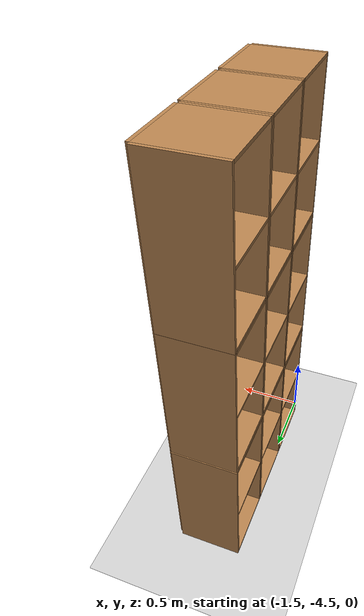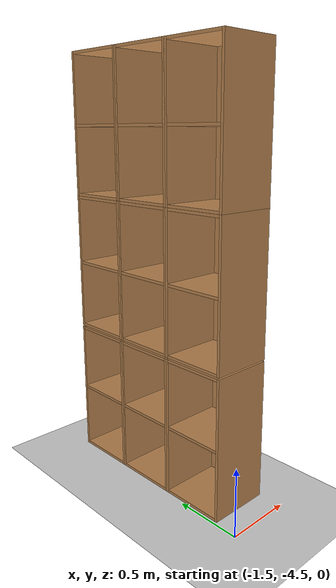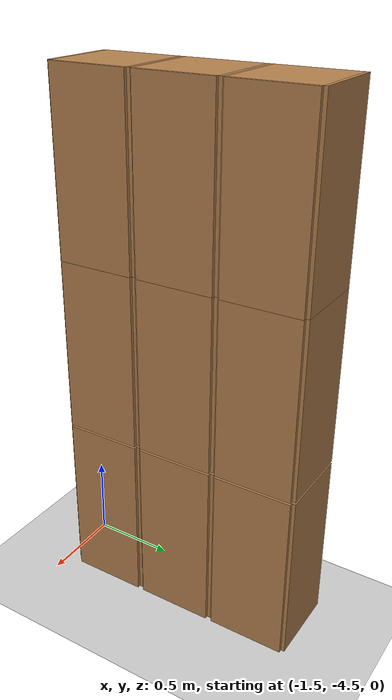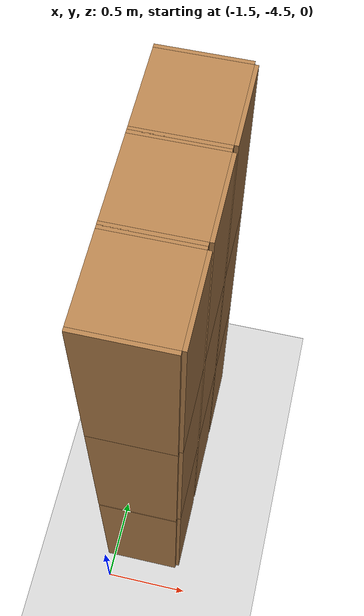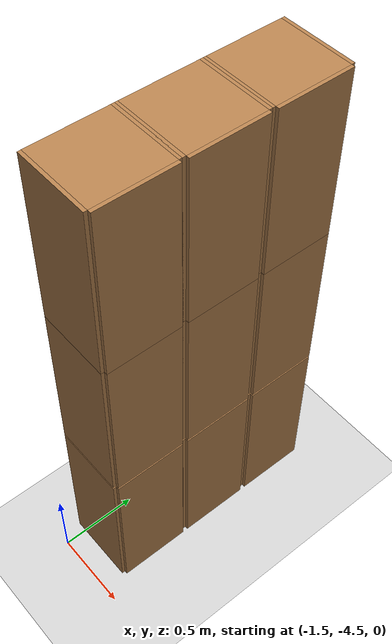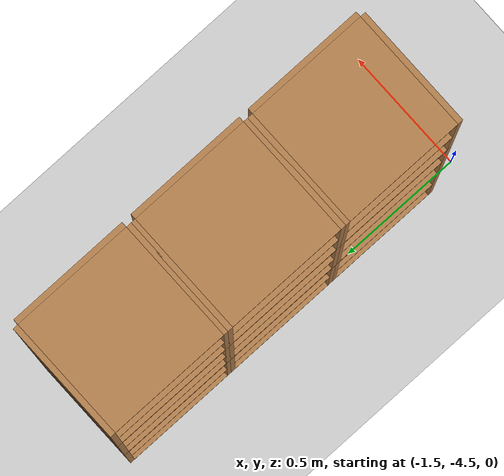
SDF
<sdf version="1.6">
 <world name="default">
  <model name="ground_plane">
   <static>1</static>
   <link name="link">
    <collision name="collision">
     <geometry><plane><normal>0 0 1</normal><size>100 100</size></plane></geometry>
     <surface>
      <contact><collide_bitmask>65535</collide_bitmask></contact>
      <friction><ode><mu>100</mu><mu2>50</mu2></ode></friction>
     </surface>
    </collision>
    <visual name="visual">
     <cast_shadows>0</cast_shadows>
     <geometry><plane><normal>0 0 1</normal><size>100 100</size></plane></geometry>
     <material>
      <script><uri>file://media/materials/scripts/gazebo.material</uri><name>Gazebo/Grey</name></script>
     </material>
    </visual>
   </link>
  </model>
  <model name="Locker18_clone_4_clone_2_clone_2_clone_2_clone_clone">
   <model name="Locker18">
    <model name="Locker3">
     <model name="cabinet">
      <static>1</static>
      <link name="cabinet_bottom_plate">
       <inertial>
        <pose>0 0 -1 0 -0 0</pose>
        <inertia><ixx>2.05</ixx><ixy>0</ixy><ixz>0</ixz><iyy>2.05</iyy><iyz>0</iyz><izz>2.05</izz></inertia>
        <mass>25</mass>
       </inertial>
       <collision name="cabinet_bottom_plate_geom">
        <pose>0 0 0.01 0 -0 0</pose>
        <geometry><box><size>0.45 0.45 0.02</size></box></geometry>
       </collision>
       <visual name="cabinet_bottom_plate_geom_visual">
        <pose>0 0 0.01 0 -0 0</pose>
        <geometry><box><size>0.45 0.45 0.02</size></box></geometry>
        <material>
         <script><uri>file://media/materials/scripts/gazebo.material</uri><name>Gazebo/Wood</name></script>
        </material>
       </visual>
       <collision name="cabinet_bottom_plate_geom_cabinet_back_plate">
        <pose>0.235 0 0.51 0 -0 0</pose>
        <geometry><box><size>0.02 0.45 1.02</size></box></geometry>
       </collision>
       <visual name="cabinet_bottom_plate_geom_cabinet_back_plate_visual">
        <pose>0.235 0 0.51 0 -0 0</pose>
        <geometry><box><size>0.02 0.45 1.02</size></box></geometry>
        <material>
         <script><uri>file://media/materials/scripts/gazebo.material</uri><name>Gazebo/Wood</name></script>
        </material>
       </visual>
       <collision name="cabinet_bottom_plate_geom_cabinet_left_plate">
        <pose>0 0.235 0.51 0 -0 0</pose>
        <geometry><box><size>0.45 0.02 1.02</size></box></geometry>
       </collision>
       <visual name="cabinet_bottom_plate_geom_cabinet_left_plate_visual">
        <pose>0 0.235 0.51 0 -0 0</pose>
        <geometry><box><size>0.45 0.02 1.02</size></box></geometry>
        <material>
         <script><uri>file://media/materials/scripts/gazebo.material</uri><name>Gazebo/Wood</name></script>
        </material>
       </visual>
       <collision name="cabinet_bottom_plate_geom_cabinet_middle_plate">
        <pose>0 0 0.51 0 -0 0</pose>
        <geometry><box><size>0.45 0.45 0.02</size></box></geometry>
       </collision>
       <visual name="cabinet_bottom_plate_geom_cabinet_middle_plate_visual">
        <pose>0 0 0.51 0 -0 0</pose>
        <geometry><box><size>0.45 0.45 0.02</size></box></geometry>
        <material>
         <script><uri>file://media/materials/scripts/gazebo.material</uri><name>Gazebo/Wood</name></script>
        </material>
       </visual>
       <collision name="cabinet_bottom_plate_geom_cabinet_right_plate">
        <pose>0 -0.235 0.51 0 -0 0</pose>
        <geometry><box><size>0.45 0.02 1.02</size></box></geometry>
       </collision>
       <visual name="cabinet_bottom_plate_geom_cabinet_right_plate_visual">
        <pose>0 -0.235 0.51 0 -0 0</pose>
        <geometry><box><size>0.45 0.02 1.02</size></box></geometry>
        <material>
         <script><uri>file://media/materials/scripts/gazebo.material</uri><name>Gazebo/Wood</name></script>
        </material>
       </visual>
       <collision name="cabinet_bottom_plate_geom_cabinet_top_plate">
        <pose>0 0 1.01 0 -0 0</pose>
        <geometry><box><size>0.45 0.45 0.02</size></box></geometry>
       </collision>
       <visual name="cabinet_bottom_plate_geom_cabinet_top_plate_visual">
        <pose>0 0 1.01 0 -0 0</pose>
        <geometry><box><size>0.45 0.45 0.02</size></box></geometry>
        <material>
         <script><uri>file://media/materials/scripts/gazebo.material</uri><name>Gazebo/Wood</name></script>
        </material>
       </visual>
      </link>
      <pose>-0.676968 1.45758 0 0 -0 0</pose>
     </model>
     <model name="cabinet_clone">
      <static>1</static>
      <link name="cabinet_bottom_plate">
       <inertial>
        <pose>0 0 -1 0 -0 0</pose>
        <inertia><ixx>2.05</ixx><ixy>0</ixy><ixz>0</ixz><iyy>2.05</iyy><iyz>0</iyz><izz>2.05</izz></inertia>
        <mass>25</mass>
       </inertial>
       <collision name="cabinet_bottom_plate_geom">
        <pose>0 0 0.01 0 -0 0</pose>
        <geometry><box><size>0.45 0.45 0.02</size></box></geometry>
       </collision>
       <visual name="cabinet_bottom_plate_geom_visual">
        <pose>0 0 0.01 0 -0 0</pose>
        <geometry><box><size>0.45 0.45 0.02</size></box></geometry>
        <material>
         <script><uri>file://media/materials/scripts/gazebo.material</uri><name>Gazebo/Wood</name></script>
        </material>
       </visual>
       <collision name="cabinet_bottom_plate_geom_cabinet_back_plate">
        <pose>0.235 0 0.51 0 -0 0</pose>
        <geometry><box><size>0.02 0.45 1.02</size></box></geometry>
       </collision>
       <visual name="cabinet_bottom_plate_geom_cabinet_back_plate_visual">
        <pose>0.235 0 0.51 0 -0 0</pose>
        <geometry><box><size>0.02 0.45 1.02</size></box></geometry>
        <material>
         <script><uri>file://media/materials/scripts/gazebo.material</uri><name>Gazebo/Wood</name></script>
        </material>
       </visual>
       <collision name="cabinet_bottom_plate_geom_cabinet_left_plate">
        <pose>0 0.235 0.51 0 -0 0</pose>
        <geometry><box><size>0.45 0.02 1.02</size></box></geometry>
       </collision>
       <visual name="cabinet_bottom_plate_geom_cabinet_left_plate_visual">
        <pose>0 0.235 0.51 0 -0 0</pose>
        <geometry><box><size>0.45 0.02 1.02</size></box></geometry>
        <material>
         <script><uri>file://media/materials/scripts/gazebo.material</uri><name>Gazebo/Wood</name></script>
        </material>
       </visual>
       <collision name="cabinet_bottom_plate_geom_cabinet_middle_plate">
        <pose>0 0 0.51 0 -0 0</pose>
        <geometry><box><size>0.45 0.45 0.02</size></box></geometry>
       </collision>
       <visual name="cabinet_bottom_plate_geom_cabinet_middle_plate_visual">
        <pose>0 0 0.51 0 -0 0</pose>
        <geometry><box><size>0.45 0.45 0.02</size></box></geometry>
        <material>
         <script><uri>file://media/materials/scripts/gazebo.material</uri><name>Gazebo/Wood</name></script>
        </material>
       </visual>
       <collision name="cabinet_bottom_plate_geom_cabinet_right_plate">
        <pose>0 -0.235 0.51 0 -0 0</pose>
        <geometry><box><size>0.45 0.02 1.02</size></box></geometry>
       </collision>
       <visual name="cabinet_bottom_plate_geom_cabinet_right_plate_visual">
        <pose>0 -0.235 0.51 0 -0 0</pose>
        <geometry><box><size>0.45 0.02 1.02</size></box></geometry>
        <material>
         <script><uri>file://media/materials/scripts/gazebo.material</uri><name>Gazebo/Wood</name></script>
        </material>
       </visual>
       <collision name="cabinet_bottom_plate_geom_cabinet_top_plate">
        <pose>0 0 1.01 0 -0 0</pose>
        <geometry><box><size>0.45 0.45 0.02</size></box></geometry>
       </collision>
       <visual name="cabinet_bottom_plate_geom_cabinet_top_plate_visual">
        <pose>0 0 1.01 0 -0 0</pose>
        <geometry><box><size>0.45 0.45 0.02</size></box></geometry>
        <material>
         <script><uri>file://media/materials/scripts/gazebo.material</uri><name>Gazebo/Wood</name></script>
        </material>
       </visual>
      </link>
      <pose>-0.676968 0.970971 0 0 -0 0</pose>
     </model>
     <model name="cabinet_clone_0">
      <static>1</static>
      <link name="cabinet_bottom_plate">
       <inertial>
        <pose>0 0 -1 0 -0 0</pose>
        <inertia><ixx>2.05</ixx><ixy>0</ixy><ixz>0</ixz><iyy>2.05</iyy><iyz>0</iyz><izz>2.05</izz></inertia>
        <mass>25</mass>
       </inertial>
       <collision name="cabinet_bottom_plate_geom">
        <pose>0 0 0.01 0 -0 0</pose>
        <geometry><box><size>0.45 0.45 0.02</size></box></geometry>
       </collision>
       <visual name="cabinet_bottom_plate_geom_visual">
        <pose>0 0 0.01 0 -0 0</pose>
        <geometry><box><size>0.45 0.45 0.02</size></box></geometry>
        <material>
         <script><uri>file://media/materials/scripts/gazebo.material</uri><name>Gazebo/Wood</name></script>
        </material>
       </visual>
       <collision name="cabinet_bottom_plate_geom_cabinet_back_plate">
        <pose>0.235 0 0.51 0 -0 0</pose>
        <geometry><box><size>0.02 0.45 1.02</size></box></geometry>
       </collision>
       <visual name="cabinet_bottom_plate_geom_cabinet_back_plate_visual">
        <pose>0.235 0 0.51 0 -0 0</pose>
        <geometry><box><size>0.02 0.45 1.02</size></box></geometry>
        <material>
         <script><uri>file://media/materials/scripts/gazebo.material</uri><name>Gazebo/Wood</name></script>
        </material>
       </visual>
       <collision name="cabinet_bottom_plate_geom_cabinet_left_plate">
        <pose>0 0.235 0.51 0 -0 0</pose>
        <geometry><box><size>0.45 0.02 1.02</size></box></geometry>
       </collision>
       <visual name="cabinet_bottom_plate_geom_cabinet_left_plate_visual">
        <pose>0 0.235 0.51 0 -0 0</pose>
        <geometry><box><size>0.45 0.02 1.02</size></box></geometry>
        <material>
         <script><uri>file://media/materials/scripts/gazebo.material</uri><name>Gazebo/Wood</name></script>
        </material>
       </visual>
       <collision name="cabinet_bottom_plate_geom_cabinet_middle_plate">
        <pose>0 0 0.51 0 -0 0</pose>
        <geometry><box><size>0.45 0.45 0.02</size></box></geometry>
       </collision>
       <visual name="cabinet_bottom_plate_geom_cabinet_middle_plate_visual">
        <pose>0 0 0.51 0 -0 0</pose>
        <geometry><box><size>0.45 0.45 0.02</size></box></geometry>
        <material>
         <script><uri>file://media/materials/scripts/gazebo.material</uri><name>Gazebo/Wood</name></script>
        </material>
       </visual>
       <collision name="cabinet_bottom_plate_geom_cabinet_right_plate">
        <pose>0 -0.235 0.51 0 -0 0</pose>
        <geometry><box><size>0.45 0.02 1.02</size></box></geometry>
       </collision>
       <visual name="cabinet_bottom_plate_geom_cabinet_right_plate_visual">
        <pose>0 -0.235 0.51 0 -0 0</pose>
        <geometry><box><size>0.45 0.02 1.02</size></box></geometry>
        <material>
         <script><uri>file://media/materials/scripts/gazebo.material</uri><name>Gazebo/Wood</name></script>
        </material>
       </visual>
       <collision name="cabinet_bottom_plate_geom_cabinet_top_plate">
        <pose>0 0 1.01 0 -0 0</pose>
        <geometry><box><size>0.45 0.45 0.02</size></box></geometry>
       </collision>
       <visual name="cabinet_bottom_plate_geom_cabinet_top_plate_visual">
        <pose>0 0 1.01 0 -0 0</pose>
        <geometry><box><size>0.45 0.45 0.02</size></box></geometry>
        <material>
         <script><uri>file://media/materials/scripts/gazebo.material</uri><name>Gazebo/Wood</name></script>
        </material>
       </visual>
      </link>
      <pose>-0.676968 0.48391 0 0 -0 0</pose>
     </model>
     <static>0</static>
     <pose>0 3e-06 -1.02763 0 -0 0</pose>
    </model>
    <model name="Locker3_clone">
     <model name="cabinet">
      <static>1</static>
      <link name="cabinet_bottom_plate">
       <inertial>
        <pose>0 0 -1 0 -0 0</pose>
        <inertia><ixx>2.05</ixx><ixy>0</ixy><ixz>0</ixz><iyy>2.05</iyy><iyz>0</iyz><izz>2.05</izz></inertia>
        <mass>25</mass>
       </inertial>
       <collision name="cabinet_bottom_plate_geom">
        <pose>0 0 0.01 0 -0 0</pose>
        <geometry><box><size>0.45 0.45 0.02</size></box></geometry>
       </collision>
       <visual name="cabinet_bottom_plate_geom_visual">
        <pose>0 0 0.01 0 -0 0</pose>
        <geometry><box><size>0.45 0.45 0.02</size></box></geometry>
        <material>
         <script><uri>file://media/materials/scripts/gazebo.material</uri><name>Gazebo/Wood</name></script>
        </material>
       </visual>
       <collision name="cabinet_bottom_plate_geom_cabinet_back_plate">
        <pose>0.235 0 0.51 0 -0 0</pose>
        <geometry><box><size>0.02 0.45 1.02</size></box></geometry>
       </collision>
       <visual name="cabinet_bottom_plate_geom_cabinet_back_plate_visual">
        <pose>0.235 0 0.51 0 -0 0</pose>
        <geometry><box><size>0.02 0.45 1.02</size></box></geometry>
        <material>
         <script><uri>file://media/materials/scripts/gazebo.material</uri><name>Gazebo/Wood</name></script>
        </material>
       </visual>
       <collision name="cabinet_bottom_plate_geom_cabinet_left_plate">
        <pose>0 0.235 0.51 0 -0 0</pose>
        <geometry><box><size>0.45 0.02 1.02</size></box></geometry>
       </collision>
       <visual name="cabinet_bottom_plate_geom_cabinet_left_plate_visual">
        <pose>0 0.235 0.51 0 -0 0</pose>
        <geometry><box><size>0.45 0.02 1.02</size></box></geometry>
        <material>
         <script><uri>file://media/materials/scripts/gazebo.material</uri><name>Gazebo/Wood</name></script>
        </material>
       </visual>
       <collision name="cabinet_bottom_plate_geom_cabinet_middle_plate">
        <pose>0 0 0.51 0 -0 0</pose>
        <geometry><box><size>0.45 0.45 0.02</size></box></geometry>
       </collision>
       <visual name="cabinet_bottom_plate_geom_cabinet_middle_plate_visual">
        <pose>0 0 0.51 0 -0 0</pose>
        <geometry><box><size>0.45 0.45 0.02</size></box></geometry>
        <material>
         <script><uri>file://media/materials/scripts/gazebo.material</uri><name>Gazebo/Wood</name></script>
        </material>
       </visual>
       <collision name="cabinet_bottom_plate_geom_cabinet_right_plate">
        <pose>0 -0.235 0.51 0 -0 0</pose>
        <geometry><box><size>0.45 0.02 1.02</size></box></geometry>
       </collision>
       <visual name="cabinet_bottom_plate_geom_cabinet_right_plate_visual">
        <pose>0 -0.235 0.51 0 -0 0</pose>
        <geometry><box><size>0.45 0.02 1.02</size></box></geometry>
        <material>
         <script><uri>file://media/materials/scripts/gazebo.material</uri><name>Gazebo/Wood</name></script>
        </material>
       </visual>
       <collision name="cabinet_bottom_plate_geom_cabinet_top_plate">
        <pose>0 0 1.01 0 -0 0</pose>
        <geometry><box><size>0.45 0.45 0.02</size></box></geometry>
       </collision>
       <visual name="cabinet_bottom_plate_geom_cabinet_top_plate_visual">
        <pose>0 0 1.01 0 -0 0</pose>
        <geometry><box><size>0.45 0.45 0.02</size></box></geometry>
        <material>
         <script><uri>file://media/materials/scripts/gazebo.material</uri><name>Gazebo/Wood</name></script>
        </material>
       </visual>
      </link>
      <pose>-0.676968 1.45758 0 0 -0 0</pose>
     </model>
     <model name="cabinet_clone">
      <static>1</static>
      <link name="cabinet_bottom_plate">
       <inertial>
        <pose>0 0 -1 0 -0 0</pose>
        <inertia><ixx>2.05</ixx><ixy>0</ixy><ixz>0</ixz><iyy>2.05</iyy><iyz>0</iyz><izz>2.05</izz></inertia>
        <mass>25</mass>
       </inertial>
       <collision name="cabinet_bottom_plate_geom">
        <pose>0 0 0.01 0 -0 0</pose>
        <geometry><box><size>0.45 0.45 0.02</size></box></geometry>
       </collision>
       <visual name="cabinet_bottom_plate_geom_visual">
        <pose>0 0 0.01 0 -0 0</pose>
        <geometry><box><size>0.45 0.45 0.02</size></box></geometry>
        <material>
         <script><uri>file://media/materials/scripts/gazebo.material</uri><name>Gazebo/Wood</name></script>
        </material>
       </visual>
       <collision name="cabinet_bottom_plate_geom_cabinet_back_plate">
        <pose>0.235 0 0.51 0 -0 0</pose>
        <geometry><box><size>0.02 0.45 1.02</size></box></geometry>
       </collision>
       <visual name="cabinet_bottom_plate_geom_cabinet_back_plate_visual">
        <pose>0.235 0 0.51 0 -0 0</pose>
        <geometry><box><size>0.02 0.45 1.02</size></box></geometry>
        <material>
         <script><uri>file://media/materials/scripts/gazebo.material</uri><name>Gazebo/Wood</name></script>
        </material>
       </visual>
       <collision name="cabinet_bottom_plate_geom_cabinet_left_plate">
        <pose>0 0.235 0.51 0 -0 0</pose>
        <geometry><box><size>0.45 0.02 1.02</size></box></geometry>
       </collision>
       <visual name="cabinet_bottom_plate_geom_cabinet_left_plate_visual">
        <pose>0 0.235 0.51 0 -0 0</pose>
        <geometry><box><size>0.45 0.02 1.02</size></box></geometry>
        <material>
         <script><uri>file://media/materials/scripts/gazebo.material</uri><name>Gazebo/Wood</name></script>
        </material>
       </visual>
       <collision name="cabinet_bottom_plate_geom_cabinet_middle_plate">
        <pose>0 0 0.51 0 -0 0</pose>
        <geometry><box><size>0.45 0.45 0.02</size></box></geometry>
       </collision>
       <visual name="cabinet_bottom_plate_geom_cabinet_middle_plate_visual">
        <pose>0 0 0.51 0 -0 0</pose>
        <geometry><box><size>0.45 0.45 0.02</size></box></geometry>
        <material>
         <script><uri>file://media/materials/scripts/gazebo.material</uri><name>Gazebo/Wood</name></script>
        </material>
       </visual>
       <collision name="cabinet_bottom_plate_geom_cabinet_right_plate">
        <pose>0 -0.235 0.51 0 -0 0</pose>
        <geometry><box><size>0.45 0.02 1.02</size></box></geometry>
       </collision>
       <visual name="cabinet_bottom_plate_geom_cabinet_right_plate_visual">
        <pose>0 -0.235 0.51 0 -0 0</pose>
        <geometry><box><size>0.45 0.02 1.02</size></box></geometry>
        <material>
         <script><uri>file://media/materials/scripts/gazebo.material</uri><name>Gazebo/Wood</name></script>
        </material>
       </visual>
       <collision name="cabinet_bottom_plate_geom_cabinet_top_plate">
        <pose>0 0 1.01 0 -0 0</pose>
        <geometry><box><size>0.45 0.45 0.02</size></box></geometry>
       </collision>
       <visual name="cabinet_bottom_plate_geom_cabinet_top_plate_visual">
        <pose>0 0 1.01 0 -0 0</pose>
        <geometry><box><size>0.45 0.45 0.02</size></box></geometry>
        <material>
         <script><uri>file://media/materials/scripts/gazebo.material</uri><name>Gazebo/Wood</name></script>
        </material>
       </visual>
      </link>
      <pose>-0.676968 0.970971 0 0 -0 0</pose>
     </model>
     <model name="cabinet_clone_0">
      <static>1</static>
      <link name="cabinet_bottom_plate">
       <inertial>
        <pose>0 0 -1 0 -0 0</pose>
        <inertia><ixx>2.05</ixx><ixy>0</ixy><ixz>0</ixz><iyy>2.05</iyy><iyz>0</iyz><izz>2.05</izz></inertia>
        <mass>25</mass>
       </inertial>
       <collision name="cabinet_bottom_plate_geom">
        <pose>0 0 0.01 0 -0 0</pose>
        <geometry><box><size>0.45 0.45 0.02</size></box></geometry>
       </collision>
       <visual name="cabinet_bottom_plate_geom_visual">
        <pose>0 0 0.01 0 -0 0</pose>
        <geometry><box><size>0.45 0.45 0.02</size></box></geometry>
        <material>
         <script><uri>file://media/materials/scripts/gazebo.material</uri><name>Gazebo/Wood</name></script>
        </material>
       </visual>
       <collision name="cabinet_bottom_plate_geom_cabinet_back_plate">
        <pose>0.235 0 0.51 0 -0 0</pose>
        <geometry><box><size>0.02 0.45 1.02</size></box></geometry>
       </collision>
       <visual name="cabinet_bottom_plate_geom_cabinet_back_plate_visual">
        <pose>0.235 0 0.51 0 -0 0</pose>
        <geometry><box><size>0.02 0.45 1.02</size></box></geometry>
        <material>
         <script><uri>file://media/materials/scripts/gazebo.material</uri><name>Gazebo/Wood</name></script>
        </material>
       </visual>
       <collision name="cabinet_bottom_plate_geom_cabinet_left_plate">
        <pose>0 0.235 0.51 0 -0 0</pose>
        <geometry><box><size>0.45 0.02 1.02</size></box></geometry>
       </collision>
       <visual name="cabinet_bottom_plate_geom_cabinet_left_plate_visual">
        <pose>0 0.235 0.51 0 -0 0</pose>
        <geometry><box><size>0.45 0.02 1.02</size></box></geometry>
        <material>
         <script><uri>file://media/materials/scripts/gazebo.material</uri><name>Gazebo/Wood</name></script>
        </material>
       </visual>
       <collision name="cabinet_bottom_plate_geom_cabinet_middle_plate">
        <pose>0 0 0.51 0 -0 0</pose>
        <geometry><box><size>0.45 0.45 0.02</size></box></geometry>
       </collision>
       <visual name="cabinet_bottom_plate_geom_cabinet_middle_plate_visual">
        <pose>0 0 0.51 0 -0 0</pose>
        <geometry><box><size>0.45 0.45 0.02</size></box></geometry>
        <material>
         <script><uri>file://media/materials/scripts/gazebo.material</uri><name>Gazebo/Wood</name></script>
        </material>
       </visual>
       <collision name="cabinet_bottom_plate_geom_cabinet_right_plate">
        <pose>0 -0.235 0.51 0 -0 0</pose>
        <geometry><box><size>0.45 0.02 1.02</size></box></geometry>
       </collision>
       <visual name="cabinet_bottom_plate_geom_cabinet_right_plate_visual">
        <pose>0 -0.235 0.51 0 -0 0</pose>
        <geometry><box><size>0.45 0.02 1.02</size></box></geometry>
        <material>
         <script><uri>file://media/materials/scripts/gazebo.material</uri><name>Gazebo/Wood</name></script>
        </material>
       </visual>
       <collision name="cabinet_bottom_plate_geom_cabinet_top_plate">
        <pose>0 0 1.01 0 -0 0</pose>
        <geometry><box><size>0.45 0.45 0.02</size></box></geometry>
       </collision>
       <visual name="cabinet_bottom_plate_geom_cabinet_top_plate_visual">
        <pose>0 0 1.01 0 -0 0</pose>
        <geometry><box><size>0.45 0.45 0.02</size></box></geometry>
        <material>
         <script><uri>file://media/materials/scripts/gazebo.material</uri><name>Gazebo/Wood</name></script>
        </material>
       </visual>
      </link>
      <pose>-0.676968 0.48391 0 0 -0 0</pose>
     </model>
     <static>0</static>
     <pose>0 3e-06 0.003717 0 -0 0</pose>
    </model>
    <model name="Locker3_clone_clone">
     <model name="cabinet">
      <static>1</static>
      <link name="cabinet_bottom_plate">
       <inertial>
        <pose>0 0 -1 0 -0 0</pose>
        <inertia><ixx>2.05</ixx><ixy>0</ixy><ixz>0</ixz><iyy>2.05</iyy><iyz>0</iyz><izz>2.05</izz></inertia>
        <mass>25</mass>
       </inertial>
       <collision name="cabinet_bottom_plate_geom">
        <pose>0 0 0.01 0 -0 0</pose>
        <geometry><box><size>0.45 0.45 0.02</size></box></geometry>
       </collision>
       <visual name="cabinet_bottom_plate_geom_visual">
        <pose>0 0 0.01 0 -0 0</pose>
        <geometry><box><size>0.45 0.45 0.02</size></box></geometry>
        <material>
         <script><uri>file://media/materials/scripts/gazebo.material</uri><name>Gazebo/Wood</name></script>
        </material>
       </visual>
       <collision name="cabinet_bottom_plate_geom_cabinet_back_plate">
        <pose>0.235 0 0.51 0 -0 0</pose>
        <geometry><box><size>0.02 0.45 1.02</size></box></geometry>
       </collision>
       <visual name="cabinet_bottom_plate_geom_cabinet_back_plate_visual">
        <pose>0.235 0 0.51 0 -0 0</pose>
        <geometry><box><size>0.02 0.45 1.02</size></box></geometry>
        <material>
         <script><uri>file://media/materials/scripts/gazebo.material</uri><name>Gazebo/Wood</name></script>
        </material>
       </visual>
       <collision name="cabinet_bottom_plate_geom_cabinet_left_plate">
        <pose>0 0.235 0.51 0 -0 0</pose>
        <geometry><box><size>0.45 0.02 1.02</size></box></geometry>
       </collision>
       <visual name="cabinet_bottom_plate_geom_cabinet_left_plate_visual">
        <pose>0 0.235 0.51 0 -0 0</pose>
        <geometry><box><size>0.45 0.02 1.02</size></box></geometry>
        <material>
         <script><uri>file://media/materials/scripts/gazebo.material</uri><name>Gazebo/Wood</name></script>
        </material>
       </visual>
       <collision name="cabinet_bottom_plate_geom_cabinet_middle_plate">
        <pose>0 0 0.51 0 -0 0</pose>
        <geometry><box><size>0.45 0.45 0.02</size></box></geometry>
       </collision>
       <visual name="cabinet_bottom_plate_geom_cabinet_middle_plate_visual">
        <pose>0 0 0.51 0 -0 0</pose>
        <geometry><box><size>0.45 0.45 0.02</size></box></geometry>
        <material>
         <script><uri>file://media/materials/scripts/gazebo.material</uri><name>Gazebo/Wood</name></script>
        </material>
       </visual>
       <collision name="cabinet_bottom_plate_geom_cabinet_right_plate">
        <pose>0 -0.235 0.51 0 -0 0</pose>
        <geometry><box><size>0.45 0.02 1.02</size></box></geometry>
       </collision>
       <visual name="cabinet_bottom_plate_geom_cabinet_right_plate_visual">
        <pose>0 -0.235 0.51 0 -0 0</pose>
        <geometry><box><size>0.45 0.02 1.02</size></box></geometry>
        <material>
         <script><uri>file://media/materials/scripts/gazebo.material</uri><name>Gazebo/Wood</name></script>
        </material>
       </visual>
       <collision name="cabinet_bottom_plate_geom_cabinet_top_plate">
        <pose>0 0 1.01 0 -0 0</pose>
        <geometry><box><size>0.45 0.45 0.02</size></box></geometry>
       </collision>
       <visual name="cabinet_bottom_plate_geom_cabinet_top_plate_visual">
        <pose>0 0 1.01 0 -0 0</pose>
        <geometry><box><size>0.45 0.45 0.02</size></box></geometry>
        <material>
         <script><uri>file://media/materials/scripts/gazebo.material</uri><name>Gazebo/Wood</name></script>
        </material>
       </visual>
      </link>
      <pose>-0.676968 1.45758 0 0 -0 0</pose>
     </model>
     <model name="cabinet_clone">
      <static>1</static>
      <link name="cabinet_bottom_plate">
       <inertial>
        <pose>0 0 -1 0 -0 0</pose>
        <inertia><ixx>2.05</ixx><ixy>0</ixy><ixz>0</ixz><iyy>2.05</iyy><iyz>0</iyz><izz>2.05</izz></inertia>
        <mass>25</mass>
       </inertial>
       <collision name="cabinet_bottom_plate_geom">
        <pose>0 0 0.01 0 -0 0</pose>
        <geometry><box><size>0.45 0.45 0.02</size></box></geometry>
       </collision>
       <visual name="cabinet_bottom_plate_geom_visual">
        <pose>0 0 0.01 0 -0 0</pose>
        <geometry><box><size>0.45 0.45 0.02</size></box></geometry>
        <material>
         <script><uri>file://media/materials/scripts/gazebo.material</uri><name>Gazebo/Wood</name></script>
        </material>
       </visual>
       <collision name="cabinet_bottom_plate_geom_cabinet_back_plate">
        <pose>0.235 0 0.51 0 -0 0</pose>
        <geometry><box><size>0.02 0.45 1.02</size></box></geometry>
       </collision>
       <visual name="cabinet_bottom_plate_geom_cabinet_back_plate_visual">
        <pose>0.235 0 0.51 0 -0 0</pose>
        <geometry><box><size>0.02 0.45 1.02</size></box></geometry>
        <material>
         <script><uri>file://media/materials/scripts/gazebo.material</uri><name>Gazebo/Wood</name></script>
        </material>
       </visual>
       <collision name="cabinet_bottom_plate_geom_cabinet_left_plate">
        <pose>0 0.235 0.51 0 -0 0</pose>
        <geometry><box><size>0.45 0.02 1.02</size></box></geometry>
       </collision>
       <visual name="cabinet_bottom_plate_geom_cabinet_left_plate_visual">
        <pose>0 0.235 0.51 0 -0 0</pose>
        <geometry><box><size>0.45 0.02 1.02</size></box></geometry>
        <material>
         <script><uri>file://media/materials/scripts/gazebo.material</uri><name>Gazebo/Wood</name></script>
        </material>
       </visual>
       <collision name="cabinet_bottom_plate_geom_cabinet_middle_plate">
        <pose>0 0 0.51 0 -0 0</pose>
        <geometry><box><size>0.45 0.45 0.02</size></box></geometry>
       </collision>
       <visual name="cabinet_bottom_plate_geom_cabinet_middle_plate_visual">
        <pose>0 0 0.51 0 -0 0</pose>
        <geometry><box><size>0.45 0.45 0.02</size></box></geometry>
        <material>
         <script><uri>file://media/materials/scripts/gazebo.material</uri><name>Gazebo/Wood</name></script>
        </material>
       </visual>
       <collision name="cabinet_bottom_plate_geom_cabinet_right_plate">
        <pose>0 -0.235 0.51 0 -0 0</pose>
        <geometry><box><size>0.45 0.02 1.02</size></box></geometry>
       </collision>
       <visual name="cabinet_bottom_plate_geom_cabinet_right_plate_visual">
        <pose>0 -0.235 0.51 0 -0 0</pose>
        <geometry><box><size>0.45 0.02 1.02</size></box></geometry>
        <material>
         <script><uri>file://media/materials/scripts/gazebo.material</uri><name>Gazebo/Wood</name></script>
        </material>
       </visual>
       <collision name="cabinet_bottom_plate_geom_cabinet_top_plate">
        <pose>0 0 1.01 0 -0 0</pose>
        <geometry><box><size>0.45 0.45 0.02</size></box></geometry>
       </collision>
       <visual name="cabinet_bottom_plate_geom_cabinet_top_plate_visual">
        <pose>0 0 1.01 0 -0 0</pose>
        <geometry><box><size>0.45 0.45 0.02</size></box></geometry>
        <material>
         <script><uri>file://media/materials/scripts/gazebo.material</uri><name>Gazebo/Wood</name></script>
        </material>
       </visual>
      </link>
      <pose>-0.676968 0.970971 0 0 -0 0</pose>
     </model>
     <model name="cabinet_clone_0">
      <static>1</static>
      <link name="cabinet_bottom_plate">
       <inertial>
        <pose>0 0 -1 0 -0 0</pose>
        <inertia><ixx>2.05</ixx><ixy>0</ixy><ixz>0</ixz><iyy>2.05</iyy><iyz>0</iyz><izz>2.05</izz></inertia>
        <mass>25</mass>
       </inertial>
       <collision name="cabinet_bottom_plate_geom">
        <pose>0 0 0.01 0 -0 0</pose>
        <geometry><box><size>0.45 0.45 0.02</size></box></geometry>
       </collision>
       <visual name="cabinet_bottom_plate_geom_visual">
        <pose>0 0 0.01 0 -0 0</pose>
        <geometry><box><size>0.45 0.45 0.02</size></box></geometry>
        <material>
         <script><uri>file://media/materials/scripts/gazebo.material</uri><name>Gazebo/Wood</name></script>
        </material>
       </visual>
       <collision name="cabinet_bottom_plate_geom_cabinet_back_plate">
        <pose>0.235 0 0.51 0 -0 0</pose>
        <geometry><box><size>0.02 0.45 1.02</size></box></geometry>
       </collision>
       <visual name="cabinet_bottom_plate_geom_cabinet_back_plate_visual">
        <pose>0.235 0 0.51 0 -0 0</pose>
        <geometry><box><size>0.02 0.45 1.02</size></box></geometry>
        <material>
         <script><uri>file://media/materials/scripts/gazebo.material</uri><name>Gazebo/Wood</name></script>
        </material>
       </visual>
       <collision name="cabinet_bottom_plate_geom_cabinet_left_plate">
        <pose>0 0.235 0.51 0 -0 0</pose>
        <geometry><box><size>0.45 0.02 1.02</size></box></geometry>
       </collision>
       <visual name="cabinet_bottom_plate_geom_cabinet_left_plate_visual">
        <pose>0 0.235 0.51 0 -0 0</pose>
        <geometry><box><size>0.45 0.02 1.02</size></box></geometry>
        <material>
         <script><uri>file://media/materials/scripts/gazebo.material</uri><name>Gazebo/Wood</name></script>
        </material>
       </visual>
       <collision name="cabinet_bottom_plate_geom_cabinet_middle_plate">
        <pose>0 0 0.51 0 -0 0</pose>
        <geometry><box><size>0.45 0.45 0.02</size></box></geometry>
       </collision>
       <visual name="cabinet_bottom_plate_geom_cabinet_middle_plate_visual">
        <pose>0 0 0.51 0 -0 0</pose>
        <geometry><box><size>0.45 0.45 0.02</size></box></geometry>
        <material>
         <script><uri>file://media/materials/scripts/gazebo.material</uri><name>Gazebo/Wood</name></script>
        </material>
       </visual>
       <collision name="cabinet_bottom_plate_geom_cabinet_right_plate">
        <pose>0 -0.235 0.51 0 -0 0</pose>
        <geometry><box><size>0.45 0.02 1.02</size></box></geometry>
       </collision>
       <visual name="cabinet_bottom_plate_geom_cabinet_right_plate_visual">
        <pose>0 -0.235 0.51 0 -0 0</pose>
        <geometry><box><size>0.45 0.02 1.02</size></box></geometry>
        <material>
         <script><uri>file://media/materials/scripts/gazebo.material</uri><name>Gazebo/Wood</name></script>
        </material>
       </visual>
       <collision name="cabinet_bottom_plate_geom_cabinet_top_plate">
        <pose>0 0 1.01 0 -0 0</pose>
        <geometry><box><size>0.45 0.45 0.02</size></box></geometry>
       </collision>
       <visual name="cabinet_bottom_plate_geom_cabinet_top_plate_visual">
        <pose>0 0 1.01 0 -0 0</pose>
        <geometry><box><size>0.45 0.45 0.02</size></box></geometry>
        <material>
         <script><uri>file://media/materials/scripts/gazebo.material</uri><name>Gazebo/Wood</name></script>
        </material>
       </visual>
      </link>
      <pose>-0.676968 0.48391 0 0 -0 0</pose>
     </model>
     <static>0</static>
     <pose>0 3e-06 1.02391 0 -0 0</pose>
    </model>
    <static>0</static>
    <pose>-0 4e-06 4e-06 0 -0 0</pose>
   </model>
   <static>0</static>
   <pose>-0.634698 -4.61103 1.08672 0 -0 0</pose>
  </model>
 </world>
</sdf>
